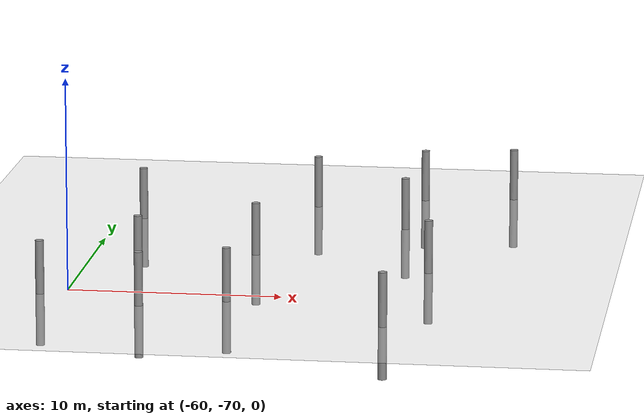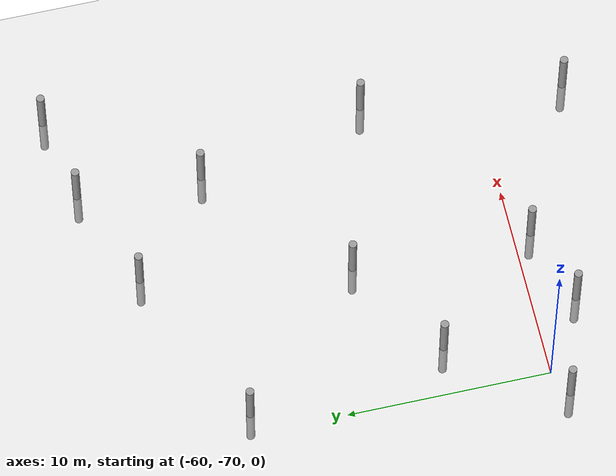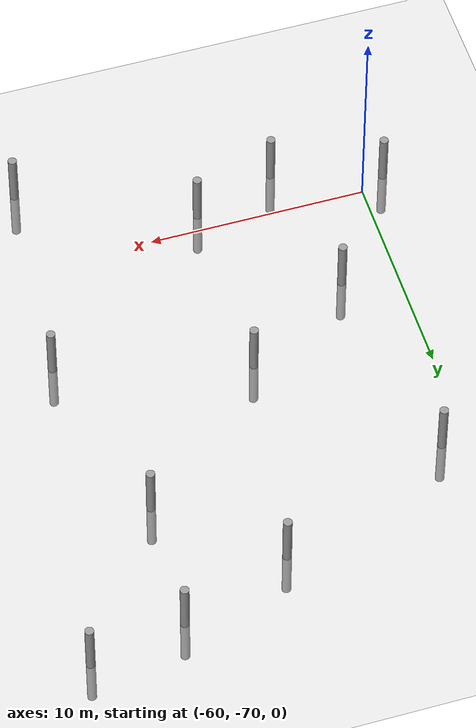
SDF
<sdf version="1.6">
 <world name="default">
  <model name="ground_plane">
   <static>1</static>
   <link name="link">
    <collision name="collision">
     <geometry><plane><normal>0 0 1</normal><size>100 100</size></plane></geometry>
     <surface><friction><ode><mu>100</mu><mu2>50</mu2></ode></friction></surface>
    </collision>
    <visual name="visual">
     <cast_shadows>0</cast_shadows>
     <geometry><plane><normal>0 0 1</normal><size>100 100</size></plane></geometry>
     <material>
      <script><uri>file://media/materials/scripts/gazebo.material</uri><name>Gazebo/Grey</name></script>
     </material>
    </visual>
   </link>
  </model>
  <model name="empty_pillars_11">
   <model name="empty_pillar_clone_28">
    <link name="link">
     <inertial>
      <mass>1</mass>
      <inertia><ixx>0.145833</ixx><ixy>0</ixy><ixz>0</ixz><iyy>0.145833</iyy><iyz>0</iyz><izz>0.125</izz></inertia>
     </inertial>
     <visual name="visual">
      <geometry><cylinder><radius>0.2</radius><length>5</length></cylinder></geometry>
      <material>
       <script><name>Gazebo/Grey</name><uri>file://media/materials/scripts/gazebo.material</uri></script>
       <shader type="vertex"><normal_map>__default__</normal_map></shader>
       <ambient>0.3 0.3 0.3 1</ambient>
       <diffuse>0.7 0.7 0.7 1</diffuse>
       <specular>0.01 0.01 0.01 1</specular>
       <emissive>0 0 0 1</emissive>
      </material>
     </visual>
     <collision name="collision">
      <geometry><cylinder><radius>0.05</radius><length>5</length></cylinder></geometry>
      <surface>
       <friction>
        <ode><mu>1</mu><mu2>1</mu2><fdir1>0 0 0</fdir1><slip1>0</slip1><slip2>0</slip2></ode>
        <torsional>
         <coefficient>1</coefficient>
         <patch_radius>0</patch_radius>
         <surface_radius>0</surface_radius>
         <use_patch_radius>1</use_patch_radius>
         <ode><slip>0</slip></ode>
        </torsional>
       </friction>
       <bounce><restitution_coefficient>0</restitution_coefficient><threshold>1e+06</threshold></bounce>
       <contact>
        <collide_without_contact>0</collide_without_contact>
        <collide_without_contact_bitmask>1</collide_without_contact_bitmask>
        <collide_bitmask>1</collide_bitmask>
        <ode>
         <soft_cfm>0</soft_cfm>
         <soft_erp>0.2</soft_erp>
         <kp>1e+13</kp>
         <kd>1</kd>
         <max_vel>0.01</max_vel>
         <min_depth>0</min_depth>
        </ode>
        <bullet>
         <split_impulse>1</split_impulse>
         <split_impulse_penetration_threshold>-0.01</split_impulse_penetration_threshold>
         <soft_cfm>0</soft_cfm>
         <soft_erp>0.2</soft_erp>
         <kp>1e+13</kp>
         <kd>1</kd>
        </bullet>
       </contact>
      </surface>
     </collision>
    </link>
    <static>0</static>
    <pose>15.5447 15.5867 0 0 -0 0</pose>
   </model>
   <model name="empty_pillar_clone_30">
    <link name="link">
     <inertial>
      <mass>1</mass>
      <inertia><ixx>0.145833</ixx><ixy>0</ixy><ixz>0</ixz><iyy>0.145833</iyy><iyz>0</iyz><izz>0.125</izz></inertia>
     </inertial>
     <visual name="visual">
      <geometry><cylinder><radius>0.2</radius><length>5</length></cylinder></geometry>
      <material>
       <script><name>Gazebo/Grey</name><uri>file://media/materials/scripts/gazebo.material</uri></script>
       <shader type="vertex"><normal_map>__default__</normal_map></shader>
       <ambient>0.3 0.3 0.3 1</ambient>
       <diffuse>0.7 0.7 0.7 1</diffuse>
       <specular>0.01 0.01 0.01 1</specular>
       <emissive>0 0 0 1</emissive>
      </material>
     </visual>
     <collision name="collision">
      <geometry><cylinder><radius>0.05</radius><length>5</length></cylinder></geometry>
      <surface>
       <friction>
        <ode><mu>1</mu><mu2>1</mu2><fdir1>0 0 0</fdir1><slip1>0</slip1><slip2>0</slip2></ode>
        <torsional>
         <coefficient>1</coefficient>
         <patch_radius>0</patch_radius>
         <surface_radius>0</surface_radius>
         <use_patch_radius>1</use_patch_radius>
         <ode><slip>0</slip></ode>
        </torsional>
       </friction>
       <bounce><restitution_coefficient>0</restitution_coefficient><threshold>1e+06</threshold></bounce>
       <contact>
        <collide_without_contact>0</collide_without_contact>
        <collide_without_contact_bitmask>1</collide_without_contact_bitmask>
        <collide_bitmask>1</collide_bitmask>
        <ode>
         <soft_cfm>0</soft_cfm>
         <soft_erp>0.2</soft_erp>
         <kp>1e+13</kp>
         <kd>1</kd>
         <max_vel>0.01</max_vel>
         <min_depth>0</min_depth>
        </ode>
        <bullet>
         <split_impulse>1</split_impulse>
         <split_impulse_penetration_threshold>-0.01</split_impulse_penetration_threshold>
         <soft_cfm>0</soft_cfm>
         <soft_erp>0.2</soft_erp>
         <kp>1e+13</kp>
         <kd>1</kd>
        </bullet>
       </contact>
      </surface>
     </collision>
    </link>
    <static>0</static>
    <pose>23.752 19.2231 0 0 -0 0</pose>
   </model>
   <model name="empty_pillar_clone_31">
    <link name="link">
     <inertial>
      <mass>1</mass>
      <inertia><ixx>0.145833</ixx><ixy>0</ixy><ixz>0</ixz><iyy>0.145833</iyy><iyz>0</iyz><izz>0.125</izz></inertia>
     </inertial>
     <visual name="visual">
      <geometry><cylinder><radius>0.2</radius><length>5</length></cylinder></geometry>
      <material>
       <script><name>Gazebo/Grey</name><uri>file://media/materials/scripts/gazebo.material</uri></script>
       <shader type="vertex"><normal_map>__default__</normal_map></shader>
       <ambient>0.3 0.3 0.3 1</ambient>
       <diffuse>0.7 0.7 0.7 1</diffuse>
       <specular>0.01 0.01 0.01 1</specular>
       <emissive>0 0 0 1</emissive>
      </material>
     </visual>
     <collision name="collision">
      <geometry><cylinder><radius>0.05</radius><length>5</length></cylinder></geometry>
      <surface>
       <friction>
        <ode><mu>1</mu><mu2>1</mu2><fdir1>0 0 0</fdir1><slip1>0</slip1><slip2>0</slip2></ode>
        <torsional>
         <coefficient>1</coefficient>
         <patch_radius>0</patch_radius>
         <surface_radius>0</surface_radius>
         <use_patch_radius>1</use_patch_radius>
         <ode><slip>0</slip></ode>
        </torsional>
       </friction>
       <bounce><restitution_coefficient>0</restitution_coefficient><threshold>1e+06</threshold></bounce>
       <contact>
        <collide_without_contact>0</collide_without_contact>
        <collide_without_contact_bitmask>1</collide_without_contact_bitmask>
        <collide_bitmask>1</collide_bitmask>
        <ode>
         <soft_cfm>0</soft_cfm>
         <soft_erp>0.2</soft_erp>
         <kp>1e+13</kp>
         <kd>1</kd>
         <max_vel>0.01</max_vel>
         <min_depth>0</min_depth>
        </ode>
        <bullet>
         <split_impulse>1</split_impulse>
         <split_impulse_penetration_threshold>-0.01</split_impulse_penetration_threshold>
         <soft_cfm>0</soft_cfm>
         <soft_erp>0.2</soft_erp>
         <kp>1e+13</kp>
         <kd>1</kd>
        </bullet>
       </contact>
      </surface>
     </collision>
    </link>
    <static>0</static>
    <pose>22.0722 9.04182 0 0 -0 0</pose>
   </model>
   <model name="empty_pillar_clone_32">
    <link name="link">
     <inertial>
      <mass>1</mass>
      <inertia><ixx>0.145833</ixx><ixy>0</ixy><ixz>0</ixz><iyy>0.145833</iyy><iyz>0</iyz><izz>0.125</izz></inertia>
     </inertial>
     <visual name="visual">
      <geometry><cylinder><radius>0.2</radius><length>5</length></cylinder></geometry>
      <material>
       <script><name>Gazebo/Grey</name><uri>file://media/materials/scripts/gazebo.material</uri></script>
       <shader type="vertex"><normal_map>__default__</normal_map></shader>
       <ambient>0.3 0.3 0.3 1</ambient>
       <diffuse>0.7 0.7 0.7 1</diffuse>
       <specular>0.01 0.01 0.01 1</specular>
       <emissive>0 0 0 1</emissive>
      </material>
     </visual>
     <collision name="collision">
      <geometry><cylinder><radius>0.05</radius><length>5</length></cylinder></geometry>
      <surface>
       <friction>
        <ode><mu>1</mu><mu2>1</mu2><fdir1>0 0 0</fdir1><slip1>0</slip1><slip2>0</slip2></ode>
        <torsional>
         <coefficient>1</coefficient>
         <patch_radius>0</patch_radius>
         <surface_radius>0</surface_radius>
         <use_patch_radius>1</use_patch_radius>
         <ode><slip>0</slip></ode>
        </torsional>
       </friction>
       <bounce><restitution_coefficient>0</restitution_coefficient><threshold>1e+06</threshold></bounce>
       <contact>
        <collide_without_contact>0</collide_without_contact>
        <collide_without_contact_bitmask>1</collide_without_contact_bitmask>
        <collide_bitmask>1</collide_bitmask>
        <ode>
         <soft_cfm>0</soft_cfm>
         <soft_erp>0.2</soft_erp>
         <kp>1e+13</kp>
         <kd>1</kd>
         <max_vel>0.01</max_vel>
         <min_depth>0</min_depth>
        </ode>
        <bullet>
         <split_impulse>1</split_impulse>
         <split_impulse_penetration_threshold>-0.01</split_impulse_penetration_threshold>
         <soft_cfm>0</soft_cfm>
         <soft_erp>0.2</soft_erp>
         <kp>1e+13</kp>
         <kd>1</kd>
        </bullet>
       </contact>
      </surface>
     </collision>
    </link>
    <static>0</static>
    <pose>21.9854 0.15966 0 0 -0 0</pose>
   </model>
   <model name="empty_pillar_clone_55">
    <link name="link">
     <inertial>
      <mass>1</mass>
      <inertia><ixx>0.145833</ixx><ixy>0</ixy><ixz>0</ixz><iyy>0.145833</iyy><iyz>0</iyz><izz>0.125</izz></inertia>
     </inertial>
     <visual name="visual">
      <geometry><cylinder><radius>0.2</radius><length>5</length></cylinder></geometry>
      <material>
       <script><name>Gazebo/Grey</name><uri>file://media/materials/scripts/gazebo.material</uri></script>
       <shader type="vertex"><normal_map>__default__</normal_map></shader>
       <ambient>0.3 0.3 0.3 1</ambient>
       <diffuse>0.7 0.7 0.7 1</diffuse>
       <specular>0.01 0.01 0.01 1</specular>
       <emissive>0 0 0 1</emissive>
      </material>
     </visual>
     <collision name="collision">
      <geometry><cylinder><radius>0.05</radius><length>5</length></cylinder></geometry>
      <surface>
       <friction>
        <ode><mu>1</mu><mu2>1</mu2><fdir1>0 0 0</fdir1><slip1>0</slip1><slip2>0</slip2></ode>
        <torsional>
         <coefficient>1</coefficient>
         <patch_radius>0</patch_radius>
         <surface_radius>0</surface_radius>
         <use_patch_radius>1</use_patch_radius>
         <ode><slip>0</slip></ode>
        </torsional>
       </friction>
       <bounce><restitution_coefficient>0</restitution_coefficient><threshold>1e+06</threshold></bounce>
       <contact>
        <collide_without_contact>0</collide_without_contact>
        <collide_without_contact_bitmask>1</collide_without_contact_bitmask>
        <collide_bitmask>1</collide_bitmask>
        <ode>
         <soft_cfm>0</soft_cfm>
         <soft_erp>0.2</soft_erp>
         <kp>1e+13</kp>
         <kd>1</kd>
         <max_vel>0.01</max_vel>
         <min_depth>0</min_depth>
        </ode>
        <bullet>
         <split_impulse>1</split_impulse>
         <split_impulse_penetration_threshold>-0.01</split_impulse_penetration_threshold>
         <soft_cfm>0</soft_cfm>
         <soft_erp>0.2</soft_erp>
         <kp>1e+13</kp>
         <kd>1</kd>
        </bullet>
       </contact>
      </surface>
     </collision>
    </link>
    <static>0</static>
    <pose>13.2247 0.382706 0 0 -0 0</pose>
   </model>
   <model name="empty_pillar_clone_7">
    <link name="link">
     <inertial>
      <mass>1</mass>
      <inertia><ixx>0.145833</ixx><ixy>0</ixy><ixz>0</ixz><iyy>0.145833</iyy><iyz>0</iyz><izz>0.125</izz></inertia>
     </inertial>
     <visual name="visual">
      <geometry><cylinder><radius>0.2</radius><length>5</length></cylinder></geometry>
      <material>
       <script><name>Gazebo/Grey</name><uri>file://media/materials/scripts/gazebo.material</uri></script>
       <shader type="vertex"><normal_map>__default__</normal_map></shader>
       <ambient>0.3 0.3 0.3 1</ambient>
       <diffuse>0.7 0.7 0.7 1</diffuse>
       <specular>0.01 0.01 0.01 1</specular>
       <emissive>0 0 0 1</emissive>
      </material>
     </visual>
     <collision name="collision">
      <geometry><cylinder><radius>0.05</radius><length>5</length></cylinder></geometry>
      <surface>
       <friction>
        <ode><mu>1</mu><mu2>1</mu2><fdir1>0 0 0</fdir1><slip1>0</slip1><slip2>0</slip2></ode>
        <torsional>
         <coefficient>1</coefficient>
         <patch_radius>0</patch_radius>
         <surface_radius>0</surface_radius>
         <use_patch_radius>1</use_patch_radius>
         <ode><slip>0</slip></ode>
        </torsional>
       </friction>
       <bounce><restitution_coefficient>0</restitution_coefficient><threshold>1e+06</threshold></bounce>
       <contact>
        <collide_without_contact>0</collide_without_contact>
        <collide_without_contact_bitmask>1</collide_without_contact_bitmask>
        <collide_bitmask>1</collide_bitmask>
        <ode>
         <soft_cfm>0</soft_cfm>
         <soft_erp>0.2</soft_erp>
         <kp>1e+13</kp>
         <kd>1</kd>
         <max_vel>0.01</max_vel>
         <min_depth>0</min_depth>
        </ode>
        <bullet>
         <split_impulse>1</split_impulse>
         <split_impulse_penetration_threshold>-0.01</split_impulse_penetration_threshold>
         <soft_cfm>0</soft_cfm>
         <soft_erp>0.2</soft_erp>
         <kp>1e+13</kp>
         <kd>1</kd>
        </bullet>
       </contact>
      </surface>
     </collision>
    </link>
    <static>0</static>
    <pose>16.9242 5.74519 0 0 -0 0</pose>
   </model>
   <model name="empty_pillar_clone_9">
    <link name="link">
     <inertial>
      <mass>1</mass>
      <inertia><ixx>0.145833</ixx><ixy>0</ixy><ixz>0</ixz><iyy>0.145833</iyy><iyz>0</iyz><izz>0.125</izz></inertia>
     </inertial>
     <visual name="visual">
      <geometry><cylinder><radius>0.2</radius><length>5</length></cylinder></geometry>
      <material>
       <script><name>Gazebo/Grey</name><uri>file://media/materials/scripts/gazebo.material</uri></script>
       <shader type="vertex"><normal_map>__default__</normal_map></shader>
       <ambient>0.3 0.3 0.3 1</ambient>
       <diffuse>0.7 0.7 0.7 1</diffuse>
       <specular>0.01 0.01 0.01 1</specular>
       <emissive>0 0 0 1</emissive>
      </material>
     </visual>
     <collision name="collision">
      <geometry><cylinder><radius>0.05</radius><length>5</length></cylinder></geometry>
      <surface>
       <friction>
        <ode><mu>1</mu><mu2>1</mu2><fdir1>0 0 0</fdir1><slip1>0</slip1><slip2>0</slip2></ode>
        <torsional>
         <coefficient>1</coefficient>
         <patch_radius>0</patch_radius>
         <surface_radius>0</surface_radius>
         <use_patch_radius>1</use_patch_radius>
         <ode><slip>0</slip></ode>
        </torsional>
       </friction>
       <bounce><restitution_coefficient>0</restitution_coefficient><threshold>1e+06</threshold></bounce>
       <contact>
        <collide_without_contact>0</collide_without_contact>
        <collide_without_contact_bitmask>1</collide_without_contact_bitmask>
        <collide_bitmask>1</collide_bitmask>
        <ode>
         <soft_cfm>0</soft_cfm>
         <soft_erp>0.2</soft_erp>
         <kp>1e+13</kp>
         <kd>1</kd>
         <max_vel>0.01</max_vel>
         <min_depth>0</min_depth>
        </ode>
        <bullet>
         <split_impulse>1</split_impulse>
         <split_impulse_penetration_threshold>-0.01</split_impulse_penetration_threshold>
         <soft_cfm>0</soft_cfm>
         <soft_erp>0.2</soft_erp>
         <kp>1e+13</kp>
         <kd>1</kd>
        </bullet>
       </contact>
      </surface>
     </collision>
    </link>
    <static>0</static>
    <pose>18.1111 -1.13899 0 0 -0 0</pose>
   </model>
   <static>0</static>
   <pose>-74.4153 -71.0606 0 0 -0 0</pose>
  </model>
  <model name="empty_pillars_12">
   <model name="empty_pillar_clone_18">
    <link name="link">
     <inertial>
      <mass>1</mass>
      <inertia><ixx>0.145833</ixx><ixy>0</ixy><ixz>0</ixz><iyy>0.145833</iyy><iyz>0</iyz><izz>0.125</izz></inertia>
     </inertial>
     <visual name="visual">
      <geometry><cylinder><radius>0.2</radius><length>5</length></cylinder></geometry>
      <material>
       <script><name>Gazebo/Grey</name><uri>file://media/materials/scripts/gazebo.material</uri></script>
       <shader type="vertex"><normal_map>__default__</normal_map></shader>
       <ambient>0.3 0.3 0.3 1</ambient>
       <diffuse>0.7 0.7 0.7 1</diffuse>
       <specular>0.01 0.01 0.01 1</specular>
       <emissive>0 0 0 1</emissive>
      </material>
     </visual>
     <collision name="collision">
      <geometry><cylinder><radius>0.05</radius><length>5</length></cylinder></geometry>
      <surface>
       <friction>
        <ode><mu>1</mu><mu2>1</mu2><fdir1>0 0 0</fdir1><slip1>0</slip1><slip2>0</slip2></ode>
        <torsional>
         <coefficient>1</coefficient>
         <patch_radius>0</patch_radius>
         <surface_radius>0</surface_radius>
         <use_patch_radius>1</use_patch_radius>
         <ode><slip>0</slip></ode>
        </torsional>
       </friction>
       <bounce><restitution_coefficient>0</restitution_coefficient><threshold>1e+06</threshold></bounce>
       <contact>
        <collide_without_contact>0</collide_without_contact>
        <collide_without_contact_bitmask>1</collide_without_contact_bitmask>
        <collide_bitmask>1</collide_bitmask>
        <ode>
         <soft_cfm>0</soft_cfm>
         <soft_erp>0.2</soft_erp>
         <kp>1e+13</kp>
         <kd>1</kd>
         <max_vel>0.01</max_vel>
         <min_depth>0</min_depth>
        </ode>
        <bullet>
         <split_impulse>1</split_impulse>
         <split_impulse_penetration_threshold>-0.01</split_impulse_penetration_threshold>
         <soft_cfm>0</soft_cfm>
         <soft_erp>0.2</soft_erp>
         <kp>1e+13</kp>
         <kd>1</kd>
        </bullet>
       </contact>
      </surface>
     </collision>
    </link>
    <static>0</static>
    <pose>-20.0146 5.15966 0 0 -0 0</pose>
   </model>
   <model name="empty_pillar_clone_21">
    <link name="link">
     <inertial>
      <mass>1</mass>
      <inertia><ixx>0.145833</ixx><ixy>0</ixy><ixz>0</ixz><iyy>0.145833</iyy><iyz>0</iyz><izz>0.125</izz></inertia>
     </inertial>
     <visual name="visual">
      <geometry><cylinder><radius>0.2</radius><length>5</length></cylinder></geometry>
      <material>
       <script><name>Gazebo/Grey</name><uri>file://media/materials/scripts/gazebo.material</uri></script>
       <shader type="vertex"><normal_map>__default__</normal_map></shader>
       <ambient>0.3 0.3 0.3 1</ambient>
       <diffuse>0.7 0.7 0.7 1</diffuse>
       <specular>0.01 0.01 0.01 1</specular>
       <emissive>0 0 0 1</emissive>
      </material>
     </visual>
     <collision name="collision">
      <geometry><cylinder><radius>0.05</radius><length>5</length></cylinder></geometry>
      <surface>
       <friction>
        <ode><mu>1</mu><mu2>1</mu2><fdir1>0 0 0</fdir1><slip1>0</slip1><slip2>0</slip2></ode>
        <torsional>
         <coefficient>1</coefficient>
         <patch_radius>0</patch_radius>
         <surface_radius>0</surface_radius>
         <use_patch_radius>1</use_patch_radius>
         <ode><slip>0</slip></ode>
        </torsional>
       </friction>
       <bounce><restitution_coefficient>0</restitution_coefficient><threshold>1e+06</threshold></bounce>
       <contact>
        <collide_without_contact>0</collide_without_contact>
        <collide_without_contact_bitmask>1</collide_without_contact_bitmask>
        <collide_bitmask>1</collide_bitmask>
        <ode>
         <soft_cfm>0</soft_cfm>
         <soft_erp>0.2</soft_erp>
         <kp>1e+13</kp>
         <kd>1</kd>
         <max_vel>0.01</max_vel>
         <min_depth>0</min_depth>
        </ode>
        <bullet>
         <split_impulse>1</split_impulse>
         <split_impulse_penetration_threshold>-0.01</split_impulse_penetration_threshold>
         <soft_cfm>0</soft_cfm>
         <soft_erp>0.2</soft_erp>
         <kp>1e+13</kp>
         <kd>1</kd>
        </bullet>
       </contact>
      </surface>
     </collision>
    </link>
    <static>0</static>
    <pose>-21.7273 19.7662 0 0 -0 0</pose>
   </model>
   <model name="empty_pillar_clone_22">
    <link name="link">
     <inertial>
      <mass>1</mass>
      <inertia><ixx>0.145833</ixx><ixy>0</ixy><ixz>0</ixz><iyy>0.145833</iyy><iyz>0</iyz><izz>0.125</izz></inertia>
     </inertial>
     <visual name="visual">
      <geometry><cylinder><radius>0.2</radius><length>5</length></cylinder></geometry>
      <material>
       <script><name>Gazebo/Grey</name><uri>file://media/materials/scripts/gazebo.material</uri></script>
       <shader type="vertex"><normal_map>__default__</normal_map></shader>
       <ambient>0.3 0.3 0.3 1</ambient>
       <diffuse>0.7 0.7 0.7 1</diffuse>
       <specular>0.01 0.01 0.01 1</specular>
       <emissive>0 0 0 1</emissive>
      </material>
     </visual>
     <collision name="collision">
      <geometry><cylinder><radius>0.05</radius><length>5</length></cylinder></geometry>
      <surface>
       <friction>
        <ode><mu>1</mu><mu2>1</mu2><fdir1>0 0 0</fdir1><slip1>0</slip1><slip2>0</slip2></ode>
        <torsional>
         <coefficient>1</coefficient>
         <patch_radius>0</patch_radius>
         <surface_radius>0</surface_radius>
         <use_patch_radius>1</use_patch_radius>
         <ode><slip>0</slip></ode>
        </torsional>
       </friction>
       <bounce><restitution_coefficient>0</restitution_coefficient><threshold>1e+06</threshold></bounce>
       <contact>
        <collide_without_contact>0</collide_without_contact>
        <collide_without_contact_bitmask>1</collide_without_contact_bitmask>
        <collide_bitmask>1</collide_bitmask>
        <ode>
         <soft_cfm>0</soft_cfm>
         <soft_erp>0.2</soft_erp>
         <kp>1e+13</kp>
         <kd>1</kd>
         <max_vel>0.01</max_vel>
         <min_depth>0</min_depth>
        </ode>
        <bullet>
         <split_impulse>1</split_impulse>
         <split_impulse_penetration_threshold>-0.01</split_impulse_penetration_threshold>
         <soft_cfm>0</soft_cfm>
         <soft_erp>0.2</soft_erp>
         <kp>1e+13</kp>
         <kd>1</kd>
        </bullet>
       </contact>
      </surface>
     </collision>
    </link>
    <static>0</static>
    <pose>-17.3667 20.5782 0 0 -0 0</pose>
   </model>
   <model name="empty_pillar_clone_36">
    <link name="link">
     <inertial>
      <mass>1</mass>
      <inertia><ixx>0.145833</ixx><ixy>0</ixy><ixz>0</ixz><iyy>0.145833</iyy><iyz>0</iyz><izz>0.125</izz></inertia>
     </inertial>
     <visual name="visual">
      <geometry><cylinder><radius>0.2</radius><length>5</length></cylinder></geometry>
      <material>
       <script><name>Gazebo/Grey</name><uri>file://media/materials/scripts/gazebo.material</uri></script>
       <shader type="vertex"><normal_map>__default__</normal_map></shader>
       <ambient>0.3 0.3 0.3 1</ambient>
       <diffuse>0.7 0.7 0.7 1</diffuse>
       <specular>0.01 0.01 0.01 1</specular>
       <emissive>0 0 0 1</emissive>
      </material>
     </visual>
     <collision name="collision">
      <geometry><cylinder><radius>0.05</radius><length>5</length></cylinder></geometry>
      <surface>
       <friction>
        <ode><mu>1</mu><mu2>1</mu2><fdir1>0 0 0</fdir1><slip1>0</slip1><slip2>0</slip2></ode>
        <torsional>
         <coefficient>1</coefficient>
         <patch_radius>0</patch_radius>
         <surface_radius>0</surface_radius>
         <use_patch_radius>1</use_patch_radius>
         <ode><slip>0</slip></ode>
        </torsional>
       </friction>
       <bounce><restitution_coefficient>0</restitution_coefficient><threshold>1e+06</threshold></bounce>
       <contact>
        <collide_without_contact>0</collide_without_contact>
        <collide_without_contact_bitmask>1</collide_without_contact_bitmask>
        <collide_bitmask>1</collide_bitmask>
        <ode>
         <soft_cfm>0</soft_cfm>
         <soft_erp>0.2</soft_erp>
         <kp>1e+13</kp>
         <kd>1</kd>
         <max_vel>0.01</max_vel>
         <min_depth>0</min_depth>
        </ode>
        <bullet>
         <split_impulse>1</split_impulse>
         <split_impulse_penetration_threshold>-0.01</split_impulse_penetration_threshold>
         <soft_cfm>0</soft_cfm>
         <soft_erp>0.2</soft_erp>
         <kp>1e+13</kp>
         <kd>1</kd>
        </bullet>
       </contact>
      </surface>
     </collision>
    </link>
    <static>0</static>
    <pose>-21.0146 -4.84034 0 0 -0 0</pose>
   </model>
   <model name="empty_pillar_clone_50">
    <link name="link">
     <inertial>
      <mass>1</mass>
      <inertia><ixx>0.145833</ixx><ixy>0</ixy><ixz>0</ixz><iyy>0.145833</iyy><iyz>0</iyz><izz>0.125</izz></inertia>
     </inertial>
     <visual name="visual">
      <geometry><cylinder><radius>0.2</radius><length>5</length></cylinder></geometry>
      <material>
       <script><name>Gazebo/Grey</name><uri>file://media/materials/scripts/gazebo.material</uri></script>
       <shader type="vertex"><normal_map>__default__</normal_map></shader>
       <ambient>0.3 0.3 0.3 1</ambient>
       <diffuse>0.7 0.7 0.7 1</diffuse>
       <specular>0.01 0.01 0.01 1</specular>
       <emissive>0 0 0 1</emissive>
      </material>
     </visual>
     <collision name="collision">
      <geometry><cylinder><radius>0.05</radius><length>5</length></cylinder></geometry>
      <surface>
       <friction>
        <ode><mu>1</mu><mu2>1</mu2><fdir1>0 0 0</fdir1><slip1>0</slip1><slip2>0</slip2></ode>
        <torsional>
         <coefficient>1</coefficient>
         <patch_radius>0</patch_radius>
         <surface_radius>0</surface_radius>
         <use_patch_radius>1</use_patch_radius>
         <ode><slip>0</slip></ode>
        </torsional>
       </friction>
       <bounce><restitution_coefficient>0</restitution_coefficient><threshold>1e+06</threshold></bounce>
       <contact>
        <collide_without_contact>0</collide_without_contact>
        <collide_without_contact_bitmask>1</collide_without_contact_bitmask>
        <collide_bitmask>1</collide_bitmask>
        <ode>
         <soft_cfm>0</soft_cfm>
         <soft_erp>0.2</soft_erp>
         <kp>1e+13</kp>
         <kd>1</kd>
         <max_vel>0.01</max_vel>
         <min_depth>0</min_depth>
        </ode>
        <bullet>
         <split_impulse>1</split_impulse>
         <split_impulse_penetration_threshold>-0.01</split_impulse_penetration_threshold>
         <soft_cfm>0</soft_cfm>
         <soft_erp>0.2</soft_erp>
         <kp>1e+13</kp>
         <kd>1</kd>
        </bullet>
       </contact>
      </surface>
     </collision>
    </link>
    <static>0</static>
    <pose>-22.0498 13.6251 0 0 -0 0</pose>
   </model>
   <static>0</static>
   <pose>-23.7837 -69.5726 0 0 -0 0</pose>
  </model>
 </world>
</sdf>
